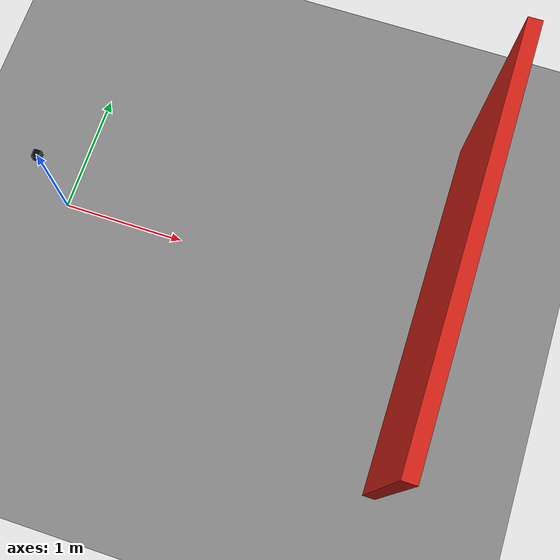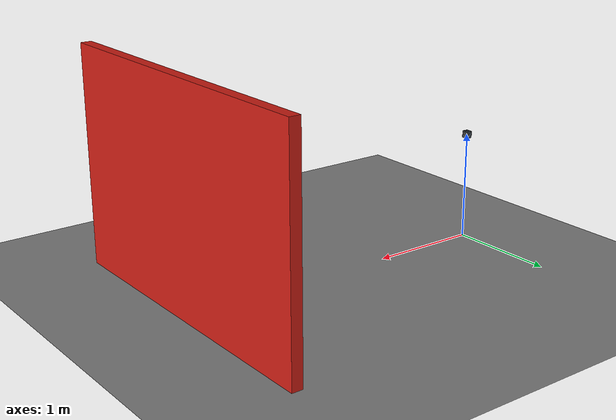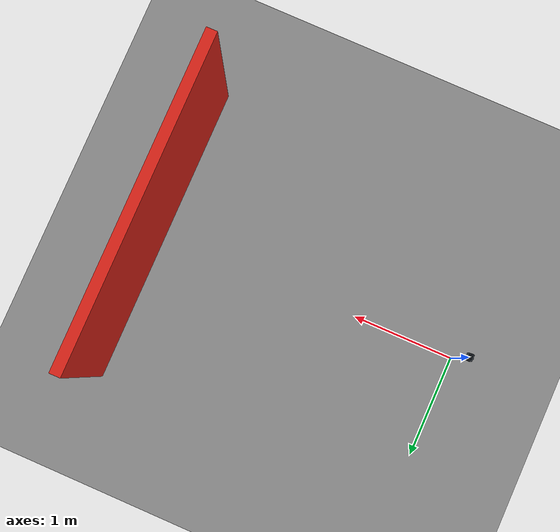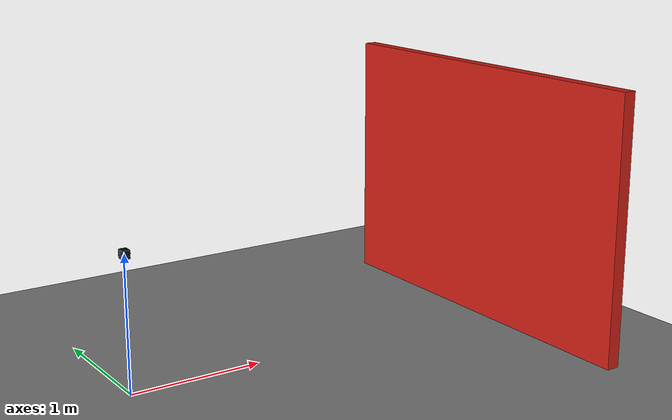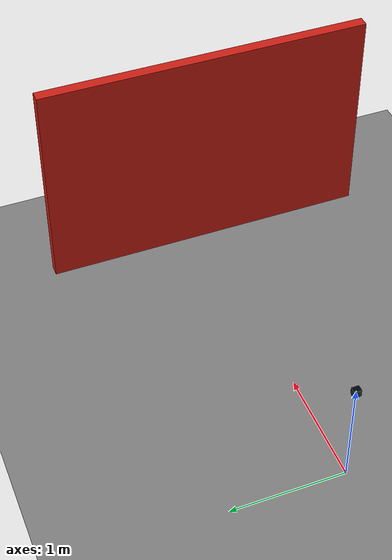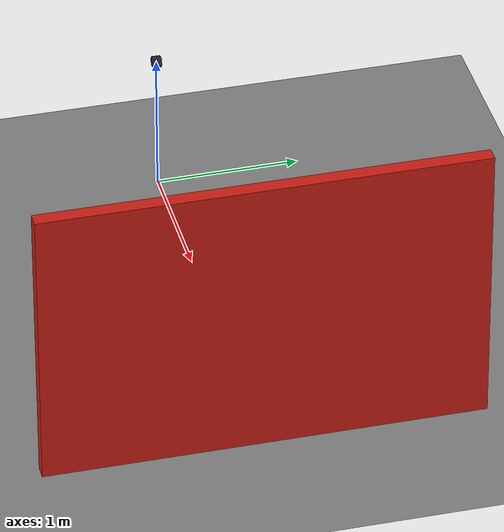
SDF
<?xml version="1.0"?>
<sdf version="1.9">
  <world name="odin1_lite_demo">
    <gravity>0 0 -9.81</gravity>
    <physics name="default" type="ignored"><max_step_size>0.001</max_step_size><real_time_factor>1</real_time_factor></physics>
    <plugin filename="gz-sim-physics-system" name="gz::sim::systems::Physics"/>
    <plugin filename="gz-sim-user-commands-system" name="gz::sim::systems::UserCommands"/>
    <plugin filename="gz-sim-scene-broadcaster-system" name="gz::sim::systems::SceneBroadcaster"/>
    <plugin filename="gz-sim-sensors-system" name="gz::sim::systems::Sensors"><render_engine>ogre2</render_engine></plugin>
    <plugin filename="gz-sim-imu-system" name="gz::sim::systems::Imu"/>
    <scene><ambient>0.6 0.6 0.6 1</ambient><background>0.7 0.8 0.9 1</background></scene>
    <light name="sun" type="directional">
      <pose>0 0 5 0 0 0</pose><direction>-0.5 0 -1</direction>
      <diffuse>0.8 0.8 0.8 1</diffuse><specular>0.2 0.2 0.2 1</specular>
    </light>
    <include>
      <uri>model://odin1_lite</uri><name>odin1_lite</name>
      <pose>0 0 1 0 0 0</pose><static>true</static>
    </include>
    <model name="ground">
      <static>true</static>
      <link name="ground">
        <collision name="ground_collision"><geometry><plane><normal>0 0 1</normal><size>20 20</size></plane></geometry></collision>
        <visual name="ground_visual"><geometry><plane><normal>0 0 1</normal><size>20 20</size></plane></geometry><material><ambient>0.5 0.5 0.5 1</ambient><diffuse>0.5 0.5 0.5 1</diffuse></material></visual>
      </link>
    </model>
    <!-- Front face at x=3 m: a known geometric target for point-cloud checks. -->
    <model name="target">
      <static>true</static><pose>3.05 0 1 0 0 0</pose>
      <link name="target">
        <collision name="target_collision"><geometry><box><size>0.1 3 2</size></box></geometry></collision>
        <visual name="target_visual"><geometry><box><size>0.1 3 2</size></box></geometry><material><ambient>0.8 0.12 0.08 1</ambient><diffuse>0.8 0.12 0.08 1</diffuse></material></visual>
      </link>
    </model>
  </world>
</sdf>

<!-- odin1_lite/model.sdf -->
<sdf version="1.9">
  <model name="odin1_lite">
    <!-- Body/IMU origin; all poses below are in metres / radians. -->
    <link name="odin1_lite_body">
      <!-- Uniform-box inertia and centred COM are simulation approximations. -->
      <inertial>
        <mass>0.274</mass>
        <inertia>
          <ixx>0.000217419</ixx><iyy>0.000185520833333</iyy><izz>0.000185520833333</izz>
        </inertia>
      </inertial>
      <collision name="housing_collision">
        <geometry><box><size>0.058 0.069 0.069</size></box></geometry>
      </collision>
      <!-- Decorative visuals follow the manual silhouette; not calibrated CAD.
           No extra collisions or links; sensor poses and physics are unchanged. -->
      <visual name="housing_visual">
        <geometry><mesh><uri>model://odin1_lite/meshes/housing.stl</uri></mesh></geometry>
        <material><ambient>0.10 0.12 0.14 1</ambient><diffuse>0.19 0.22 0.25 1</diffuse><specular>0.35 0.38 0.42 1</specular></material>
      </visual>
      <visual name="cooling_ribs_visual">
        <geometry><mesh><uri>model://odin1_lite/meshes/cooling_ribs.stl</uri></mesh></geometry>
        <material><ambient>0.15 0.17 0.19 1</ambient><diffuse>0.27 0.30 0.33 1</diffuse><specular>0.4 0.4 0.4 1</specular></material>
      </visual>
      <visual name="front_panel_visual">
        <pose>0.0293 0 0 0 0 0</pose>
        <geometry><box><size>0.001 0.057 0.057</size></box></geometry>
        <material><ambient>0.012 0.015 0.02 1</ambient><diffuse>0.025 0.032 0.042 1</diffuse><specular>0.3 0.3 0.3 1</specular></material>
      </visual>
      <visual name="dtof_tx_frame_visual">
        <pose>0.03 -0.015 0.004 0 0 0</pose>
        <geometry><box><size>0.0012 0.026 0.027</size></box></geometry>
        <material><ambient>0.28 0.30 0.32 1</ambient><diffuse>0.50 0.54 0.58 1</diffuse><specular>0.7 0.7 0.7 1</specular></material>
      </visual>
      <visual name="dtof_tx_window_visual">
        <pose>0.0307 -0.015 0.004 0 0 0</pose>
        <geometry><box><size>0.0005 0.024 0.025</size></box></geometry>
        <material><ambient>0.012 0.015 0.02 1</ambient><diffuse>0.025 0.032 0.042 1</diffuse><specular>0.3 0.3 0.3 1</specular></material>
      </visual>
      <visual name="dtof_rx_frame_visual">
        <pose>0.03 0.015 0.004 0 0 0</pose>
        <geometry><box><size>0.0012 0.026 0.027</size></box></geometry>
        <material><ambient>0.28 0.30 0.32 1</ambient><diffuse>0.50 0.54 0.58 1</diffuse><specular>0.7 0.7 0.7 1</specular></material>
      </visual>
      <visual name="dtof_rx_window_visual">
        <pose>0.0307 0.015 0.004 0 0 0</pose>
        <geometry><box><size>0.0005 0.024 0.025</size></box></geometry>
        <material><ambient>0.012 0.015 0.02 1</ambient><diffuse>0.025 0.032 0.042 1</diffuse><specular>0.3 0.3 0.3 1</specular></material>
      </visual>
      <visual name="dtof_tx_bezel_visual">
        <pose>0.0316 -0.015 0.004 0 1.570796326795 0</pose>
        <geometry><cylinder><radius>0.0112</radius><length>0.0018</length></cylinder></geometry>
        <material><ambient>0.15 0.17 0.19 1</ambient><diffuse>0.27 0.30 0.33 1</diffuse><specular>0.4 0.4 0.4 1</specular></material>
      </visual>
      <visual name="dtof_tx_glass_visual">
        <pose>0.0326 -0.015 0.004 0 1.570796326795 0</pose>
        <geometry><cylinder><radius>0.0097</radius><length>0.0005</length></cylinder></geometry>
        <material><ambient>0.035 0.014 0.022 1</ambient><diffuse>0.09 0.035 0.055 1</diffuse><specular>0.65 0.45 0.55 1</specular></material>
      </visual>
      <visual name="dtof_rx_bezel_visual">
        <pose>0.0316 0.015 0.004 0 1.570796326795 0</pose>
        <geometry><cylinder><radius>0.0086</radius><length>0.0018</length></cylinder></geometry>
        <material><ambient>0.15 0.17 0.19 1</ambient><diffuse>0.27 0.30 0.33 1</diffuse><specular>0.4 0.4 0.4 1</specular></material>
      </visual>
      <visual name="dtof_rx_glass_visual">
        <pose>0.0326 0.015 0.004 0 1.570796326795 0</pose>
        <geometry><cylinder><radius>0.0071</radius><length>0.0005</length></cylinder></geometry>
        <material><ambient>0.012 0.035 0.045 1</ambient><diffuse>0.025 0.09 0.12 1</diffuse><specular>0.85 0.92 1 1</specular></material>
      </visual>
      <visual name="rgb_outer_ring_visual">
        <pose>0.031 0 -0.02 0 1.570796326795 0</pose>
        <geometry><cylinder><radius>0.0087</radius><length>0.002</length></cylinder></geometry>
        <material><ambient>0.28 0.30 0.32 1</ambient><diffuse>0.50 0.54 0.58 1</diffuse><specular>0.7 0.7 0.7 1</specular></material>
      </visual>
      <visual name="rgb_barrel_visual">
        <pose>0.0323 0 -0.02 0 1.570796326795 0</pose>
        <geometry><cylinder><radius>0.0071</radius><length>0.002</length></cylinder></geometry>
        <material><ambient>0.012 0.015 0.02 1</ambient><diffuse>0.025 0.032 0.042 1</diffuse><specular>0.3 0.3 0.3 1</specular></material>
      </visual>
      <visual name="rgb_glass_visual">
        <pose>0.0334 0 -0.02 0 1.570796326795 0</pose>
        <geometry><cylinder><radius>0.0054</radius><length>0.0006</length></cylinder></geometry>
        <material><ambient>0.012 0.035 0.045 1</ambient><diffuse>0.025 0.09 0.12 1</diffuse><specular>0.85 0.92 1 1</specular></material>
      </visual>
      <visual name="rgb_pupil_visual">
        <pose>0.03375 0 -0.02 0 1.570796326795 0</pose>
        <geometry><cylinder><radius>0.0026</radius><length>0.0002</length></cylinder></geometry>
        <material><ambient>0.012 0.015 0.02 1</ambient><diffuse>0.025 0.032 0.042 1</diffuse><specular>0.3 0.3 0.3 1</specular></material>
      </visual>
      <visual name="right_bottom_screw_visual">
        <pose>0.0301 -0.026 -0.026 0 1.570796326795 0</pose>
        <geometry><cylinder><radius>0.0019</radius><length>0.0012</length></cylinder></geometry>
        <material><ambient>0.28 0.30 0.32 1</ambient><diffuse>0.50 0.54 0.58 1</diffuse><specular>0.7 0.7 0.7 1</specular></material>
      </visual>
      <visual name="right_bottom_screw_slot_visual">
        <pose>0.03076 -0.026 -0.026 0.785398 0 0</pose>
        <geometry><box><size>0.0001 0.0025 0.00045</size></box></geometry>
        <material><ambient>0.012 0.015 0.02 1</ambient><diffuse>0.025 0.032 0.042 1</diffuse><specular>0.3 0.3 0.3 1</specular></material>
      </visual>
      <visual name="right_top_screw_visual">
        <pose>0.0301 -0.026 0.026 0 1.570796326795 0</pose>
        <geometry><cylinder><radius>0.0019</radius><length>0.0012</length></cylinder></geometry>
        <material><ambient>0.28 0.30 0.32 1</ambient><diffuse>0.50 0.54 0.58 1</diffuse><specular>0.7 0.7 0.7 1</specular></material>
      </visual>
      <visual name="right_top_screw_slot_visual">
        <pose>0.03076 -0.026 0.026 0.785398 0 0</pose>
        <geometry><box><size>0.0001 0.0025 0.00045</size></box></geometry>
        <material><ambient>0.012 0.015 0.02 1</ambient><diffuse>0.025 0.032 0.042 1</diffuse><specular>0.3 0.3 0.3 1</specular></material>
      </visual>
      <visual name="left_bottom_screw_visual">
        <pose>0.0301 0.026 -0.026 0 1.570796326795 0</pose>
        <geometry><cylinder><radius>0.0019</radius><length>0.0012</length></cylinder></geometry>
        <material><ambient>0.28 0.30 0.32 1</ambient><diffuse>0.50 0.54 0.58 1</diffuse><specular>0.7 0.7 0.7 1</specular></material>
      </visual>
      <visual name="left_bottom_screw_slot_visual">
        <pose>0.03076 0.026 -0.026 0.785398 0 0</pose>
        <geometry><box><size>0.0001 0.0025 0.00045</size></box></geometry>
        <material><ambient>0.012 0.015 0.02 1</ambient><diffuse>0.025 0.032 0.042 1</diffuse><specular>0.3 0.3 0.3 1</specular></material>
      </visual>
      <visual name="left_top_screw_visual">
        <pose>0.0301 0.026 0.026 0 1.570796326795 0</pose>
        <geometry><cylinder><radius>0.0019</radius><length>0.0012</length></cylinder></geometry>
        <material><ambient>0.28 0.30 0.32 1</ambient><diffuse>0.50 0.54 0.58 1</diffuse><specular>0.7 0.7 0.7 1</specular></material>
      </visual>
      <visual name="left_top_screw_slot_visual">
        <pose>0.03076 0.026 0.026 0.785398 0 0</pose>
        <geometry><box><size>0.0001 0.0025 0.00045</size></box></geometry>
        <material><ambient>0.012 0.015 0.02 1</ambient><diffuse>0.025 0.032 0.042 1</diffuse><specular>0.3 0.3 0.3 1</specular></material>
      </visual>
      <visual name="status_bezel_visual">
        <pose>0.0301 -0.015 0.023 0 0 0</pose>
        <geometry><box><size>0.001 0.008 0.0028</size></box></geometry>
        <material><ambient>0.15 0.17 0.19 1</ambient><diffuse>0.27 0.30 0.33 1</diffuse><specular>0.4 0.4 0.4 1</specular></material>
      </visual>
      <visual name="status_led_visual">
        <pose>0.0307 -0.015 0.023 0 0 0</pose>
        <geometry><box><size>0.0003 0.005 0.0012</size></box></geometry>
        <material><ambient>0.05 0.6 0.5 1</ambient><diffuse>0.08 0.9 0.7 1</diffuse><emissive>0.03 0.35 0.25 1</emissive></material>
      </visual>
      <visual name="rear_connector_base_visual">
        <pose>-0.029 0 0.004 0 1.570796326795 0</pose>
        <geometry><cylinder><radius>0.0078</radius><length>0.002</length></cylinder></geometry>
        <material><ambient>0.15 0.17 0.19 1</ambient><diffuse>0.27 0.30 0.33 1</diffuse><specular>0.4 0.4 0.4 1</specular></material>
      </visual>
      <visual name="rear_connector_thread_visual">
        <pose>-0.033 0 0.004 0 1.570796326795 0</pose>
        <geometry><cylinder><radius>0.006</radius><length>0.008</length></cylinder></geometry>
        <material><ambient>0.28 0.30 0.32 1</ambient><diffuse>0.50 0.54 0.58 1</diffuse><specular>0.7 0.7 0.7 1</specular></material>
      </visual>
      <visual name="rear_connector_socket_visual">
        <pose>-0.0371 0 0.004 0 1.570796326795 0</pose>
        <geometry><cylinder><radius>0.0046</radius><length>0.0003</length></cylinder></geometry>
        <material><ambient>0.012 0.015 0.02 1</ambient><diffuse>0.025 0.032 0.042 1</diffuse><specular>0.3 0.3 0.3 1</specular></material>
      </visual>

      <!-- 200 Hz is a simulation choice: the manual specifies no IMU rate/noise. -->
      <sensor name="imu" type="imu">
        <topic>/sim/odin1_lite/imu</topic>
        <gz_frame_id>odin1_lite_body</gz_frame_id>
        <update_rate>200</update_rate><always_on>true</always_on>
      </sensor>

      <sensor name="dtof" type="gpu_lidar">
        <pose relative_to="odin1_lite_lidar">0 0 0 0 0 0</pose>
        <topic>/sim/odin1_lite/lidar</topic>
        <gz_frame_id>odin1_lite_lidar</gz_frame_id>
        <update_rate>10</update_rate><always_on>true</always_on><visualize>false</visualize>
        <lidar>
          <scan>
            <horizontal><samples>240</samples><resolution>1</resolution><min_angle>-1.047197551197</min_angle><max_angle>1.047197551197</max_angle></horizontal>
            <vertical><samples>180</samples><resolution>1</resolution><min_angle>-0.785398163397</min_angle><max_angle>0.785398163397</max_angle></vertical>
          </scan>
          <range><min>0.15</min><max>25.0</max><resolution>0.01</resolution></range>
          <!-- Constant 3 cm noise only approximates the manual's 5 m test. -->
          <noise><type>gaussian</type><mean>0</mean><stddev>0.03</stddev></noise>
        </lidar>
      </sensor>

      <!-- Rectified pinhole approximation: NOT the raw FishPoly camera.
           fx/fy derive from 121/106 degree H/V FOV; 30 Hz is a demo choice. -->
      <sensor name="rgb" type="camera">
        <pose relative_to="odin1_lite_camera">0 0 0 0 0 0</pose>
        <topic>/sim/odin1_lite/rgb/image</topic>
        <gz_frame_id>odin1_lite_camera_optical</gz_frame_id>
        <update_rate>30</update_rate><always_on>true</always_on>
        <camera>
          <horizontal_fov>2.111848394914</horizontal_fov>
          <image><width>1280</width><height>1088</height><format>R8G8B8</format></image>
          <clip><near>0.10</near><far>50</far></clip>
          <lens>
            <intrinsics><fx>362.094578040</fx><fy>409.933403256</fy><cx>640</cx><cy>544</cy><s>0</s></intrinsics>
          </lens>
          <optical_frame_id>odin1_lite_camera_optical</optical_frame_id>
          <camera_info_topic>/sim/odin1_lite/rgb/camera_info</camera_info_topic>
        </camera>
      </sensor>
    </link>

    <!-- Manual §5.2 body_T_lidar, with printed rotation orthonormalized. -->
    <frame name="odin1_lite_lidar" attached_to="odin1_lite_body">
      <pose>-0.030539872100 0.023467905200 0.033316228700 0.015869833614 0.003989832106 0.008680240493</pose>
    </frame>
    <!-- Manual's example camera calibration, NOT this user's per-device calibration. -->
    <frame name="odin1_lite_camera" attached_to="odin1_lite_body">
      <pose>-0.014563270976 0.030435708067 0.002305355772 0.024070514843 0.004267395538 0.026835666645</pose>
    </frame>
    <frame name="odin1_lite_camera_optical" attached_to="odin1_lite_camera">
      <pose>0 0 0 -1.570796326795 0 -1.570796326795</pose>
    </frame>
  </model>
</sdf>
